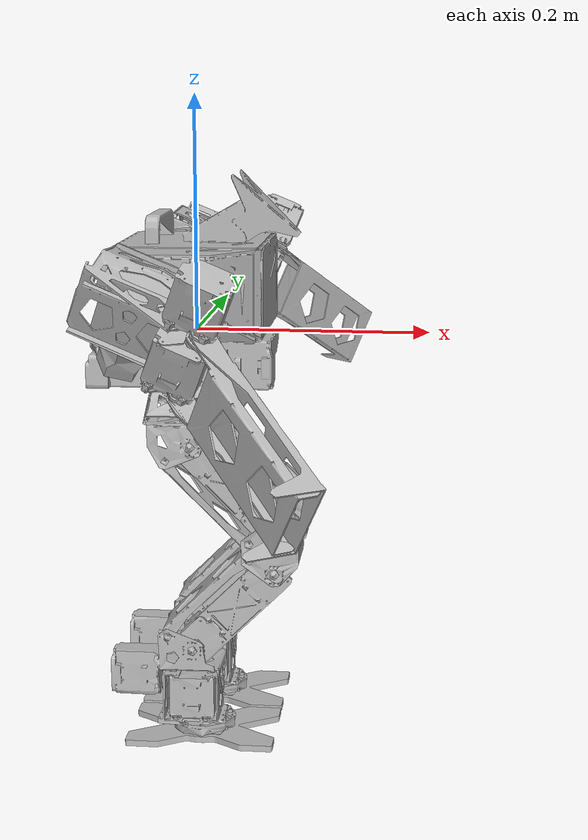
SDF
<sdf version='1.6'>
  <model name='ginko'>
    <link name='body_link0'>
      <pose frame=''>0 0 0 0 -0 0</pose>
      <inertial>
        <pose frame=''>8.3e-05 9e-06 0.038196 0 -0 0</pose>
        <mass>1.41503</mass>
        <inertia>
          <ixx>0.00248548</ixx>
          <ixy>-7.4e-07</ixy>
          <ixz>3.761e-06</ixz>
          <iyy>0.00121388</iyy>
          <iyz>-4.2e-07</iyz>
          <izz>0.00287756</izz>
        </inertia>
      </inertial>
      <collision name='body_link0_collision'>
        <pose frame=''>0 0 0 0 -0 0</pose>
        <geometry>
          <mesh>
            <scale>1 1 1</scale>
            <uri>model://ginko_description/meshes/stl/link00_chest.stl</uri>
          </mesh>
        </geometry>
        <surface>
          <contact>
            <ode>
              <kp>1e+06</kp>
              <kd>100</kd>
              <max_vel>1</max_vel>
              <min_depth>0.0001</min_depth>
            </ode>
          </contact>
          <friction>
            <ode>
              <mu>1</mu>
            </ode>
          </friction>
        </surface>
        <max_contacts>5</max_contacts>
      </collision>
      <visual name='body_link0_visual'>
        <pose frame=''>0 0 0 0 -0 0</pose>
        <geometry>
          <mesh>
            <scale>1 1 1</scale>
            <uri>model://ginko_description/meshes/obj/link00_chest.obj</uri>
          </mesh>
        </geometry>
        <material>
          <script>
            <uri>__default__</uri>
            <name>__default__</name>
          </script>
        </material>
      </visual>
      <gravity>1</gravity>
      <velocity_decay/>
      <self_collide>0</self_collide>
    </link>
    <link name='arm_l_link0'>
      <pose frame=''>0 0.10683 0.05115 0 0.3927 0</pose>
      <inertial>
        <pose frame=''>-0.011258 0.005293 0 0 -0 0</pose>
        <mass>0.0135601</mass>
        <inertia>
          <ixx>2.35e-06</ixx>
          <ixy>4e-08</ixy>
          <ixz>0</ixz>
          <iyy>1.67e-05</iyy>
          <iyz>0</iyz>
          <izz>1.606e-05</izz>
        </inertia>
      </inertial>
      <collision name='arm_l_link0_collision'>
        <pose frame=''>0 0 0 0 -0 0</pose>
        <geometry>
          <mesh>
            <scale>1 1 1</scale>
            <uri>model://ginko_description/meshes/stl/link09_l_arm01.stl</uri>
          </mesh>
        </geometry>
        <surface>
          <contact>
            <ode>
              <kp>1e+06</kp>
              <kd>100</kd>
              <max_vel>1</max_vel>
              <min_depth>0.0001</min_depth>
            </ode>
          </contact>
          <friction>
            <ode>
              <mu>1</mu>
            </ode>
          </friction>
        </surface>
        <max_contacts>5</max_contacts>
      </collision>
      <visual name='arm_l_link0_visual'>
        <pose frame=''>0 0 0 0 -0 0</pose>
        <geometry>
          <mesh>
            <scale>1 1 1</scale>
            <uri>model://ginko_description/meshes/obj/link09_l_arm01.obj</uri>
          </mesh>
        </geometry>
        <material>
          <script>
            <uri>__default__</uri>
            <name>__default__</name>
          </script>
        </material>
      </visual>
      <gravity>1</gravity>
      <velocity_decay/>
      <self_collide>0</self_collide>
    </link>
    <joint name='arm_l_joint0' type='revolute'>
      <child>arm_l_link0</child>
      <parent>body_link0</parent>
      <axis>
        <xyz>0 -1 0</xyz>
        <limit>
          <lower>-2.6</lower>
          <upper>2.6</upper>
          <effort>1000</effort>
          <velocity>10</velocity>
        </limit>
        <dynamics>
          <spring_reference>0</spring_reference>
          <spring_stiffness>0</spring_stiffness>
        </dynamics>
        <use_parent_model_frame>1</use_parent_model_frame>
      </axis>
    </joint>
    <link name='arm_l_link1'>
      <pose frame=''>0.032336 0.13143 0.037756 1.1781 0.3927 0</pose>
      <inertial>
        <pose frame=''>-0.026128 0.026506 -0.063334 0 -0 0</pose>
        <mass>0.331399</mass>
        <inertia>
          <ixx>0.00115128</ixx>
          <ixy>0.00015366</ixy>
          <ixz>-0.00031848</ixz>
          <iyy>0.00113572</iyy>
          <iyz>-0.00037104</iyz>
          <izz>0.00064743</izz>
        </inertia>
      </inertial>
      <collision name='arm_l_link1_collision'>
        <pose frame=''>0 0 0 0 -0 0</pose>
        <geometry>
          <mesh>
            <scale>1 1 1</scale>
            <uri>model://ginko_description/meshes/stl/link10_l_arm02.stl</uri>
          </mesh>
        </geometry>
        <surface>
          <contact>
            <ode>
              <kp>1e+06</kp>
              <kd>100</kd>
              <max_vel>1</max_vel>
              <min_depth>0.0001</min_depth>
            </ode>
          </contact>
          <friction>
            <ode>
              <mu>1</mu>
            </ode>
          </friction>
        </surface>
        <max_contacts>5</max_contacts>
      </collision>
      <visual name='arm_l_link1_visual'>
        <pose frame=''>0 0 0 0 -0 0</pose>
        <geometry>
          <mesh>
            <scale>1 1 1</scale>
            <uri>model://ginko_description/meshes/obj/link10_l_arm02.obj</uri>
          </mesh>
        </geometry>
        <material>
          <script>
            <uri>__default__</uri>
            <name>__default__</name>
          </script>
        </material>
      </visual>
      <gravity>1</gravity>
      <velocity_decay/>
      <self_collide>0</self_collide>
    </link>
    <joint name='arm_l_joint1' type='revolute'>
      <child>arm_l_link1</child>
      <parent>arm_l_link0</parent>
      <axis>
        <xyz>0.923879 -0 -0.382684</xyz>
        <limit>
          <lower>-0.85</lower>
          <upper>1.18</upper>
          <effort>1000</effort>
          <velocity>10</velocity>
        </limit>
        <dynamics>
          <spring_reference>0</spring_reference>
          <spring_stiffness>0</spring_stiffness>
        </dynamics>
        <use_parent_model_frame>1</use_parent_model_frame>
      </axis>
    </joint>
    <link name='arm_l_link2'>
      <pose frame=''>0.043634 0.256715 0.040991 1.59493 0.54755 0.871268</pose>
      <inertial>
        <pose frame=''>0.082349 -0.030247 0.005141 0 -0 0</pose>
        <mass>0.0328785</mass>
        <inertia>
          <ixx>2.277e-05</ixx>
          <ixy>-1.4e-07</ixy>
          <ixz>-5.8e-07</ixz>
          <iyy>8.197e-05</iyy>
          <iyz>-1e-08</iyz>
          <izz>0.00010105</izz>
        </inertia>
      </inertial>
      <collision name='arm_l_link2_collision'>
        <pose frame=''>0 0 0 0 -0 0</pose>
        <geometry>
          <mesh>
            <scale>1 1 1</scale>
            <uri>model://ginko_description/meshes/stl/link11_l_scissor01.stl</uri>
          </mesh>
        </geometry>
        <surface>
          <contact>
            <ode>
              <kp>1e+06</kp>
              <kd>100</kd>
              <max_vel>1</max_vel>
              <min_depth>0.0001</min_depth>
            </ode>
          </contact>
          <friction>
            <ode>
              <mu>1</mu>
            </ode>
          </friction>
        </surface>
        <max_contacts>5</max_contacts>
      </collision>
      <visual name='arm_l_link2_visual'>
        <pose frame=''>0 0 0 0 -0 0</pose>
        <geometry>
          <mesh>
            <scale>1 1 1</scale>
            <uri>model://ginko_description/meshes/obj/link11_l_scissor01.obj</uri>
          </mesh>
        </geometry>
        <material>
          <script>
            <uri>__default__</uri>
            <name>__default__</name>
          </script>
        </material>
      </visual>
      <gravity>1</gravity>
      <velocity_decay/>
      <self_collide>0</self_collide>
    </link>
    <joint name='arm_l_joint2' type='revolute'>
      <child>arm_l_link2</child>
      <parent>arm_l_link1</parent>
      <axis>
        <xyz>0.353555 0.382681 0.853554</xyz>
        <limit>
          <lower>-2.36</lower>
          <upper>2.36</upper>
          <effort>1000</effort>
          <velocity>10</velocity>
        </limit>
        <dynamics>
          <spring_reference>0</spring_reference>
          <spring_stiffness>0</spring_stiffness>
        </dynamics>
        <use_parent_model_frame>1</use_parent_model_frame>
      </axis>
    </joint>
    <link name='arm_l_link3'>
      <pose frame=''>0.023658 0.235093 -0.007235 1.59493 0.54755 0.871268</pose>
      <inertial>
        <pose frame=''>0.07807 0.025152 -0.006654 0 -0 0</pose>
        <mass>0.0293611</mass>
        <inertia>
          <ixx>1.452e-05</ixx>
          <ixy>2.3e-07</ixy>
          <ixz>-2.45e-06</ixz>
          <iyy>6.407e-05</iyy>
          <iyz>-2e-08</iyz>
          <izz>8.024e-05</izz>
        </inertia>
      </inertial>
      <collision name='arm_l_link3_collision'>
        <pose frame=''>0 0 0 0 -0 0</pose>
        <geometry>
          <mesh>
            <scale>1 1 1</scale>
            <uri>model://ginko_description/meshes/stl/link12_l_scissor02.stl</uri>
          </mesh>
        </geometry>
        <surface>
          <contact>
            <ode>
              <kp>1e+06</kp>
              <kd>100</kd>
              <max_vel>1</max_vel>
              <min_depth>0.0001</min_depth>
            </ode>
          </contact>
          <friction>
            <ode>
              <mu>1</mu>
            </ode>
          </friction>
        </surface>
        <max_contacts>5</max_contacts>
      </collision>
      <visual name='arm_l_link3_visual'>
        <pose frame=''>0 0 0 0 -0 0</pose>
        <geometry>
          <mesh>
            <scale>1 1 1</scale>
            <uri>model://ginko_description/meshes/obj/link12_l_scissor02.obj</uri>
          </mesh>
        </geometry>
        <material>
          <script>
            <uri>__default__</uri>
            <name>__default__</name>
          </script>
        </material>
      </visual>
      <gravity>1</gravity>
      <velocity_decay/>
      <self_collide>0</self_collide>
    </link>
    <joint name='arm_l_joint3' type='revolute'>
      <child>arm_l_link3</child>
      <parent>arm_l_link1</parent>
      <axis>
        <xyz>0.353555 0.382681 0.853554</xyz>
        <limit>
          <lower>-2.36</lower>
          <upper>2.36</upper>
          <effort>1000</effort>
          <velocity>10</velocity>
        </limit>
        <dynamics>
          <spring_reference>0</spring_reference>
          <spring_stiffness>0</spring_stiffness>
        </dynamics>
        <use_parent_model_frame>1</use_parent_model_frame>
      </axis>
    </joint>
    <link name='arm_l_urg_link'>
      <pose frame=''>-0.025808 0.187645 0.016544 -2.72079 0.362091 1.72835</pose>
      <inertial>
        <pose frame=''>-0.000146 8e-06 -0.023605 0 -0 0</pose>
        <mass>0.167055</mass>
        <inertia>
          <ixx>8.801e-05</ixx>
          <ixy>0</ixy>
          <ixz>-4.9e-07</ixz>
          <iyy>8.854e-05</iyy>
          <iyz>-4e-08</iyz>
          <izz>6.019e-05</izz>
        </inertia>
      </inertial>
      <collision name='arm_l_urg_link_collision'>
        <pose frame=''>0 0 0 0 -0 0</pose>
        <geometry>
          <mesh>
            <scale>1 1 1</scale>
            <uri>model://ginko_description/meshes/stl/urg.stl</uri>
          </mesh>
        </geometry>
      </collision>
      <visual name='arm_l_urg_link_visual'>
        <pose frame=''>0 0 0 0 -0 0</pose>
        <geometry>
          <mesh>
            <scale>1 1 1</scale>
            <uri>model://ginko_description/meshes/obj/urg.obj</uri>
          </mesh>
        </geometry>
      </visual>
    </link>
    <joint name='arm_l_urg_joint' type='revolute'>
      <child>arm_l_urg_link</child>
      <parent>arm_l_link1</parent>
      <axis>
        <xyz>-0.352702 -0.383416 -0.853577</xyz>
        <limit>
          <lower>0</lower>
          <upper>0</upper>
          <effort>0</effort>
          <velocity>0</velocity>
        </limit>
        <dynamics>
          <spring_reference>0</spring_reference>
          <spring_stiffness>0</spring_stiffness>
        </dynamics>
        <use_parent_model_frame>1</use_parent_model_frame>
      </axis>
    </joint>
    <link name='arm_r_link0'>
      <pose frame=''>0 -0.10683 0.05115 0 0.3927 0</pose>
      <inertial>
        <pose frame=''>-0.011258 -0.005293 0 0 -0 0</pose>
        <mass>0.0135601</mass>
        <inertia>
          <ixx>2.35e-06</ixx>
          <ixy>-4e-08</ixy>
          <ixz>0</ixz>
          <iyy>1.67e-05</iyy>
          <iyz>0</iyz>
          <izz>1.606e-05</izz>
        </inertia>
      </inertial>
      <collision name='arm_r_link0_collision'>
        <pose frame=''>0 0 0 0 -0 0</pose>
        <geometry>
          <mesh>
            <scale>1 1 1</scale>
            <uri>model://ginko_description/meshes/stl/link09_r_arm01.stl</uri>
          </mesh>
        </geometry>
        <surface>
          <contact>
            <ode>
              <kp>1e+06</kp>
              <kd>100</kd>
              <max_vel>1</max_vel>
              <min_depth>0.0001</min_depth>
            </ode>
          </contact>
          <friction>
            <ode>
              <mu>1</mu>
            </ode>
          </friction>
        </surface>
        <max_contacts>5</max_contacts>
      </collision>
      <visual name='arm_r_link0_visual'>
        <pose frame=''>0 0 0 0 -0 0</pose>
        <geometry>
          <mesh>
            <scale>1 1 1</scale>
            <uri>model://ginko_description/meshes/obj/link09_r_arm01.obj</uri>
          </mesh>
        </geometry>
        <material>
          <script>
            <uri>__default__</uri>
            <name>__default__</name>
          </script>
        </material>
      </visual>
      <gravity>1</gravity>
      <velocity_decay/>
      <self_collide>0</self_collide>
    </link>
    <joint name='arm_r_joint0' type='revolute'>
      <child>arm_r_link0</child>
      <parent>body_link0</parent>
      <axis>
        <xyz>0 1 0</xyz>
        <limit>
          <lower>-2.6</lower>
          <upper>2.6</upper>
          <effort>1000</effort>
          <velocity>10</velocity>
        </limit>
        <dynamics>
          <spring_reference>0</spring_reference>
          <spring_stiffness>0</spring_stiffness>
        </dynamics>
        <use_parent_model_frame>1</use_parent_model_frame>
      </axis>
    </joint>
    <link name='arm_r_link1'>
      <pose frame=''>0.032336 -0.13143 0.037756 -1.1781 0.3927 0</pose>
      <inertial>
        <pose frame=''>-0.026128 -0.026506 -0.063334 0 -0 0</pose>
        <mass>0.331399</mass>
        <inertia>
          <ixx>0.00115128</ixx>
          <ixy>-0.00015366</ixy>
          <ixz>-0.00031848</ixz>
          <iyy>0.00113572</iyy>
          <iyz>0.00037104</iyz>
          <izz>0.00064743</izz>
        </inertia>
      </inertial>
      <collision name='arm_r_link1_collision'>
        <pose frame=''>0 0 0 0 -0 0</pose>
        <geometry>
          <mesh>
            <scale>1 1 1</scale>
            <uri>model://ginko_description/meshes/stl/link10_r_arm02.stl</uri>
          </mesh>
        </geometry>
        <surface>
          <contact>
            <ode>
              <kp>1e+06</kp>
              <kd>100</kd>
              <max_vel>1</max_vel>
              <min_depth>0.0001</min_depth>
            </ode>
          </contact>
          <friction>
            <ode>
              <mu>1</mu>
            </ode>
          </friction>
        </surface>
        <max_contacts>5</max_contacts>
      </collision>
      <visual name='arm_r_link1_visual'>
        <pose frame=''>0 0 0 0 -0 0</pose>
        <geometry>
          <mesh>
            <scale>1 1 1</scale>
            <uri>model://ginko_description/meshes/obj/link10_r_arm02.obj</uri>
          </mesh>
        </geometry>
        <material>
          <script>
            <uri>__default__</uri>
            <name>__default__</name>
          </script>
        </material>
      </visual>
      <gravity>1</gravity>
      <velocity_decay/>
      <self_collide>0</self_collide>
    </link>
    <joint name='arm_r_joint1' type='revolute'>
      <child>arm_r_link1</child>
      <parent>arm_r_link0</parent>
      <axis>
        <xyz>0.923879 0 -0.382684</xyz>
        <limit>
          <lower>-0.85</lower>
          <upper>1.18</upper>
          <effort>1000</effort>
          <velocity>10</velocity>
        </limit>
        <dynamics>
          <spring_reference>0</spring_reference>
          <spring_stiffness>0</spring_stiffness>
        </dynamics>
        <use_parent_model_frame>1</use_parent_model_frame>
      </axis>
    </joint>
    <link name='arm_r_link2'>
      <pose frame=''>0.043634 -0.256715 0.040991 -1.59493 0.54755 -0.871268</pose>
      <inertial>
        <pose frame=''>0.082349 0.030247 0.005141 0 -0 0</pose>
        <mass>0.0328785</mass>
        <inertia>
          <ixx>2.277e-05</ixx>
          <ixy>1.4e-07</ixy>
          <ixz>-5.8e-07</ixz>
          <iyy>8.197e-05</iyy>
          <iyz>1e-08</iyz>
          <izz>0.00010105</izz>
        </inertia>
      </inertial>
      <collision name='arm_r_link2_collision'>
        <pose frame=''>0 0 0 0 -0 0</pose>
        <geometry>
          <mesh>
            <scale>1 1 1</scale>
            <uri>model://ginko_description/meshes/stl/link11_r_scissor01.stl</uri>
          </mesh>
        </geometry>
        <surface>
          <contact>
            <ode>
              <kp>1e+06</kp>
              <kd>100</kd>
              <max_vel>1</max_vel>
              <min_depth>0.0001</min_depth>
            </ode>
          </contact>
          <friction>
            <ode>
              <mu>1</mu>
            </ode>
          </friction>
        </surface>
        <max_contacts>5</max_contacts>
      </collision>
      <visual name='arm_r_link2_visual'>
        <pose frame=''>0 0 0 0 -0 0</pose>
        <geometry>
          <mesh>
            <scale>1 1 1</scale>
            <uri>model://ginko_description/meshes/obj/link11_r_scissor01.obj</uri>
          </mesh>
        </geometry>
        <material>
          <script>
            <uri>__default__</uri>
            <name>__default__</name>
          </script>
        </material>
      </visual>
      <gravity>1</gravity>
      <velocity_decay/>
      <self_collide>0</self_collide>
    </link>
    <joint name='arm_r_joint2' type='revolute'>
      <child>arm_r_link2</child>
      <parent>arm_r_link1</parent>
      <axis>
        <xyz>0.353555 -0.382681 0.853554</xyz>
        <limit>
          <lower>-2.36</lower>
          <upper>2.36</upper>
          <effort>1000</effort>
          <velocity>10</velocity>
        </limit>
        <dynamics>
          <spring_reference>0</spring_reference>
          <spring_stiffness>0</spring_stiffness>
        </dynamics>
        <use_parent_model_frame>1</use_parent_model_frame>
      </axis>
    </joint>
    <link name='arm_r_link3'>
      <pose frame=''>0.023658 -0.235093 -0.007235 -1.59493 0.54755 -0.871268</pose>
      <inertial>
        <pose frame=''>0.07807 -0.025152 -0.006654 0 -0 0</pose>
        <mass>0.0293611</mass>
        <inertia>
          <ixx>1.452e-05</ixx>
          <ixy>-2.3e-07</ixy>
          <ixz>-2.45e-06</ixz>
          <iyy>6.407e-05</iyy>
          <iyz>2e-08</iyz>
          <izz>8.024e-05</izz>
        </inertia>
      </inertial>
      <collision name='arm_r_link3_collision'>
        <pose frame=''>0 0 0 0 -0 0</pose>
        <geometry>
          <mesh>
            <scale>1 1 1</scale>
            <uri>model://ginko_description/meshes/stl/link12_r_scissor02.stl</uri>
          </mesh>
        </geometry>
        <surface>
          <contact>
            <ode>
              <kp>1e+06</kp>
              <kd>100</kd>
              <max_vel>1</max_vel>
              <min_depth>0.0001</min_depth>
            </ode>
          </contact>
          <friction>
            <ode>
              <mu>1</mu>
            </ode>
          </friction>
        </surface>
        <max_contacts>5</max_contacts>
      </collision>
      <visual name='arm_r_link3_visual'>
        <pose frame=''>0 0 0 0 -0 0</pose>
        <geometry>
          <mesh>
            <scale>1 1 1</scale>
            <uri>model://ginko_description/meshes/obj/link12_r_scissor02.obj</uri>
          </mesh>
        </geometry>
        <material>
          <script>
            <uri>__default__</uri>
            <name>__default__</name>
          </script>
        </material>
      </visual>
      <gravity>1</gravity>
      <velocity_decay/>
      <self_collide>0</self_collide>
    </link>
    <joint name='arm_r_joint3' type='revolute'>
      <child>arm_r_link3</child>
      <parent>arm_r_link1</parent>
      <axis>
        <xyz>0.353555 -0.382681 0.853554</xyz>
        <limit>
          <lower>-2.36</lower>
          <upper>2.36</upper>
          <effort>1000</effort>
          <velocity>10</velocity>
        </limit>
        <dynamics>
          <spring_reference>0</spring_reference>
          <spring_stiffness>0</spring_stiffness>
        </dynamics>
        <use_parent_model_frame>1</use_parent_model_frame>
      </axis>
    </joint>
    <link name='arm_r_urg_link'>
      <pose frame=''>-0.025808 -0.187645 0.016544 2.72079 0.362091 -1.72835</pose>
      <inertial>
        <pose frame=''>-0.000146 8e-06 -0.023605 0 -0 0</pose>
        <mass>0.167055</mass>
        <inertia>
          <ixx>8.801e-05</ixx>
          <ixy>0</ixy>
          <ixz>-4.9e-07</ixz>
          <iyy>8.854e-05</iyy>
          <iyz>-4e-08</iyz>
          <izz>6.019e-05</izz>
        </inertia>
      </inertial>
      <collision name='arm_r_urg_link_collision'>
        <pose frame=''>0 0 0 0 -0 0</pose>
        <geometry>
          <mesh>
            <scale>1 1 1</scale>
            <uri>model://ginko_description/meshes/stl/urg.stl</uri>
          </mesh>
        </geometry>
      </collision>
      <visual name='arm_r_urg_link_visual'>
        <pose frame=''>0 0 0 0 -0 0</pose>
        <geometry>
          <mesh>
            <scale>1 1 1</scale>
            <uri>model://ginko_description/meshes/obj/urg.obj</uri>
          </mesh>
        </geometry>
      </visual>
    </link>
    <joint name='arm_r_urg_joint' type='revolute'>
      <child>arm_r_urg_link</child>
      <parent>arm_r_link1</parent>
      <axis>
        <xyz>-0.352702 0.383416 -0.853577</xyz>
        <limit>
          <lower>0</lower>
          <upper>0</upper>
          <effort>0</effort>
          <velocity>0</velocity>
        </limit>
        <dynamics>
          <spring_reference>0</spring_reference>
          <spring_stiffness>0</spring_stiffness>
        </dynamics>
        <use_parent_model_frame>1</use_parent_model_frame>
      </axis>
    </joint>
    <link name='body_link1'>
      <pose frame=''>0 0 0 0 -0 0</pose>
      <inertial>
        <pose frame=''>-0.011355 -1e-06 -0.027202 0 -0 0</pose>
        <mass>0.333127</mass>
        <inertia>
          <ixx>0.00015328</ixx>
          <ixy>3e-08</ixy>
          <ixz>1.078e-05</ixz>
          <iyy>0.00073745</iyy>
          <iyz>0</iyz>
          <izz>0.00073107</izz>
        </inertia>
      </inertial>
      <collision name='body_link1_collision'>
        <pose frame=''>0 0 0 0 -0 0</pose>
        <geometry>
          <mesh>
            <scale>1 1 1</scale>
            <uri>model://ginko_description/meshes/stl/link01_waist.stl</uri>
          </mesh>
        </geometry>
        <surface>
          <contact>
            <ode>
              <kp>1e+06</kp>
              <kd>100</kd>
              <max_vel>1</max_vel>
              <min_depth>0.0001</min_depth>
            </ode>
          </contact>
          <friction>
            <ode>
              <mu>1</mu>
            </ode>
          </friction>
        </surface>
        <max_contacts>5</max_contacts>
      </collision>
      <visual name='body_link1_visual'>
        <pose frame=''>0 0 0 0 -0 0</pose>
        <geometry>
          <mesh>
            <scale>1 1 1</scale>
            <uri>model://ginko_description/meshes/obj/link01_waist.obj</uri>
          </mesh>
        </geometry>
        <material>
          <script>
            <uri>__default__</uri>
            <name>__default__</name>
          </script>
        </material>
      </visual>
      <gravity>1</gravity>
      <velocity_decay/>
      <self_collide>0</self_collide>
    </link>
    <joint name='body_joint1' type='revolute'>
      <child>body_link1</child>
      <parent>body_link0</parent>
      <axis>
        <xyz>0 0 1</xyz>
        <limit>
          <lower>-2.6</lower>
          <upper>2.6</upper>
          <effort>1000</effort>
          <velocity>10</velocity>
        </limit>
        <dynamics>
          <spring_reference>0</spring_reference>
          <spring_stiffness>0</spring_stiffness>
        </dynamics>
        <use_parent_model_frame>1</use_parent_model_frame>
      </axis>
    </joint>
    <link name='leg_l_link0'>
      <pose frame=''>-0.0404 0 -0.0409 0 -0 0</pose>
      <inertial>
        <pose frame=''>0.029308 0.037238 -0.026054 0 -0 0</pose>
        <mass>0.0343335</mass>
        <inertia>
          <ixx>2.443e-05</ixx>
          <ixy>-2.1e-07</ixy>
          <ixz>-2.1e-07</ixz>
          <iyy>2.287e-05</iyy>
          <iyz>-3.91e-06</iyz>
          <izz>2.983e-05</izz>
        </inertia>
      </inertial>
      <collision name='leg_l_link0_collision'>
        <pose frame=''>0 0 0 0 -0 0</pose>
        <geometry>
          <mesh>
            <scale>1 1 1</scale>
            <uri>model://ginko_description/meshes/stl/link02_l_femoral.stl</uri>
          </mesh>
        </geometry>
        <surface>
          <contact>
            <ode>
              <kp>1e+06</kp>
              <kd>100</kd>
              <max_vel>3</max_vel>
              <min_depth>0.0001</min_depth>
            </ode>
          </contact>
          <friction>
            <ode>
              <mu>0</mu>
            </ode>
          </friction>
        </surface>
        <max_contacts>5</max_contacts>
      </collision>
      <visual name='leg_l_link0_visual'>
        <pose frame=''>0 0 0 0 -0 0</pose>
        <geometry>
          <mesh>
            <scale>1 1 1</scale>
            <uri>model://ginko_description/meshes/obj/link02_l_femoral.obj</uri>
          </mesh>
        </geometry>
        <material>
          <script>
            <uri>__default__</uri>
            <name>__default__</name>
          </script>
        </material>
      </visual>
      <gravity>1</gravity>
      <velocity_decay>
        <linear>0.01</linear>
        <angular>0.01</angular>
      </velocity_decay>
      <self_collide>0</self_collide>
    </link>
    <joint name='leg_l_joint0' type='revolute'>
      <child>leg_l_link0</child>
      <parent>body_link1</parent>
      <axis>
        <xyz>-1 0 0</xyz>
        <limit>
          <lower>-0.8</lower>
          <upper>1.1781</upper>
          <effort>1000</effort>
          <velocity>10</velocity>
        </limit>
        <dynamics>
          <spring_reference>0</spring_reference>
          <spring_stiffness>0</spring_stiffness>
        </dynamics>
        <use_parent_model_frame>1</use_parent_model_frame>
      </axis>
    </joint>
    <link name='leg_l_link1'>
      <pose frame=''>0.0029 0.0175 -0.089 0 0.7854 0</pose>
      <inertial>
        <pose frame=''>0.05 0.032851 0.000681 0 -0 0</pose>
        <mass>0.185257</mass>
        <inertia>
          <ixx>0.00041331</ixx>
          <ixy>-3.605e-05</ixy>
          <ixz>-0</ixz>
          <iyy>0.00027917</iyy>
          <iyz>-1.84e-06</iyz>
          <izz>0.0006651</izz>
        </inertia>
      </inertial>
      <collision name='leg_l_link1_collision'>
        <pose frame=''>0 0 0 0 -0 0</pose>
        <geometry>
          <mesh>
            <scale>1 1 1</scale>
            <uri>model://ginko_description/meshes/stl/link03_l_leg01.stl</uri>
          </mesh>
        </geometry>
        <surface>
          <contact>
            <ode>
              <kp>1e+06</kp>
              <kd>100</kd>
              <max_vel>3</max_vel>
              <min_depth>0.0001</min_depth>
            </ode>
          </contact>
          <friction>
            <ode>
              <mu>0</mu>
            </ode>
          </friction>
        </surface>
        <max_contacts>5</max_contacts>
      </collision>
      <visual name='leg_l_link1_visual'>
        <pose frame=''>0 0 0 0 -0 0</pose>
        <geometry>
          <mesh>
            <scale>1 1 1</scale>
            <uri>model://ginko_description/meshes/obj/link03_l_leg01.obj</uri>
          </mesh>
        </geometry>
        <material>
          <script>
            <uri>__default__</uri>
            <name>__default__</name>
          </script>
        </material>
      </visual>
      <gravity>1</gravity>
      <velocity_decay>
        <linear>0.01</linear>
        <angular>0.01</angular>
      </velocity_decay>
      <self_collide>1</self_collide>
    </link>
    <joint name='leg_l_joint1' type='revolute'>
      <child>leg_l_link1</child>
      <parent>leg_l_link0</parent>
      <axis>
        <xyz>0 -1 0</xyz>
        <limit>
          <lower>-1.3</lower>
          <upper>0.7854</upper>
          <effort>1000</effort>
          <velocity>10</velocity>
        </limit>
        <dynamics>
          <spring_reference>0</spring_reference>
          <spring_stiffness>0</spring_stiffness>
        </dynamics>
        <use_parent_model_frame>1</use_parent_model_frame>
      </axis>
    </joint>
    <link name='leg_l_link3'>
      <pose frame=''>0.073611 0.0175 -0.159711 0 -0 0</pose>
      <inertial>
        <pose frame=''>0.003934 0.023642 -0.0193 0 -0 0</pose>
        <mass>0.0178118</mass>
        <inertia>
          <ixx>1.301e-05</ixx>
          <ixy>8e-08</ixy>
          <ixz>0</ixz>
          <iyy>7e-06</iyy>
          <iyz>0</iyz>
          <izz>1.388e-05</izz>
        </inertia>
      </inertial>
      <collision name='leg_l_link3_collision'>
        <pose frame=''>0 0 0 0 -0 0</pose>
        <geometry>
          <mesh>
            <scale>1 1 1</scale>
            <uri>model://ginko_description/meshes/stl/link05_l_knee.stl</uri>
          </mesh>
        </geometry>
        <surface>
          <contact>
            <ode>
              <kp>1e+06</kp>
              <kd>100</kd>
              <max_vel>3</max_vel>
              <min_depth>0.0001</min_depth>
            </ode>
          </contact>
          <friction>
            <ode>
              <mu>0.3</mu>
            </ode>
          </friction>
        </surface>
        <max_contacts>5</max_contacts>
      </collision>
      <visual name='leg_l_link3_visual'>
        <pose frame=''>0 0 0 0 -0 0</pose>
        <geometry>
          <mesh>
            <scale>1 1 1</scale>
            <uri>model://ginko_description/meshes/obj/link05_l_knee.obj</uri>
          </mesh>
        </geometry>
        <material>
          <script>
            <uri>__default__</uri>
            <name>__default__</name>
          </script>
        </material>
      </visual>
      <gravity>1</gravity>
      <velocity_decay>
        <linear>0.01</linear>
        <angular>0.01</angular>
      </velocity_decay>
      <self_collide>0</self_collide>
    </link>
    <joint name='leg_l_joint3' type='revolute'>
      <child>leg_l_link3</child>
      <parent>leg_l_link1</parent>
      <axis>
        <xyz>0 1 0</xyz>
        <limit>
          <lower>-3.14159</lower>
          <upper>3.14159</upper>
          <effort>1000</effort>
          <velocity>10</velocity>
        </limit>
        <dynamics>
          <spring_reference>0</spring_reference>
          <spring_stiffness>0</spring_stiffness>
        </dynamics>
        <use_parent_model_frame>1</use_parent_model_frame>
      </axis>
    </joint>
    <link name='leg_l_link4'>
      <pose frame=''>0.073611 0.0175 -0.198311 3.14159 0.785393 3.14159</pose>
      <inertial>
        <pose frame=''>0.05 0.032851 0.000681 0 -0 0</pose>
        <mass>0.185257</mass>
        <inertia>
          <ixx>0.00041331</ixx>
          <ixy>-3.605e-05</ixy>
          <ixz>-0</ixz>
          <iyy>0.00027917</iyy>
          <iyz>-1.84e-06</iyz>
          <izz>0.0006651</izz>
        </inertia>
      </inertial>
      <collision name='leg_l_link4_collision'>
        <pose frame=''>0 0 0 0 -0 0</pose>
        <geometry>
          <mesh>
            <scale>1 1 1</scale>
            <uri>model://ginko_description/meshes/stl/link03_l_leg01.stl</uri>
          </mesh>
        </geometry>
        <surface>
          <contact>
            <ode>
              <kp>1e+06</kp>
              <kd>100</kd>
              <max_vel>3</max_vel>
              <min_depth>0.0001</min_depth>
            </ode>
          </contact>
          <friction>
            <ode>
              <mu>0</mu>
            </ode>
          </friction>
        </surface>
        <max_contacts>5</max_contacts>
      </collision>
      <visual name='leg_l_link4_visual'>
        <pose frame=''>0 0 0 0 -0 0</pose>
        <geometry>
          <mesh>
            <scale>1 1 1</scale>
            <uri>model://ginko_description/meshes/obj/link03_l_leg01.obj</uri>
          </mesh>
        </geometry>
        <material>
          <script>
            <uri>__default__</uri>
            <name>__default__</name>
          </script>
        </material>
      </visual>
      <gravity>1</gravity>
      <velocity_decay>
        <linear>0.01</linear>
        <angular>0.01</angular>
      </velocity_decay>
      <self_collide>1</self_collide>
    </link>
    <joint name='leg_l_joint4' type='revolute'>
      <child>leg_l_link4</child>
      <parent>leg_l_link3</parent>
      <axis>
        <xyz>0 -1 0</xyz>
        <limit>
          <lower>-0.7854</lower>
          <upper>1.3</upper>
          <effort>1000</effort>
          <velocity>10</velocity>
        </limit>
        <dynamics>
          <spring_reference>0</spring_reference>
          <spring_stiffness>0</spring_stiffness>
        </dynamics>
        <use_parent_model_frame>1</use_parent_model_frame>
      </axis>
    </joint>
    <link name='leg_l_link6'>
      <pose frame=''>0.002899 0.0175 -0.269021 0 -0 0</pose>
      <inertial>
        <pose frame=''>-0.041661 0.024639 -0.025863 0 -0 0</pose>
        <mass>0.087992</mass>
        <inertia>
          <ixx>2.815e-05</ixx>
          <ixy>-4.1e-07</ixy>
          <ixz>9.8e-06</ixz>
          <iyy>6.846e-05</iyy>
          <iyz>-2.6e-07</iyz>
          <izz>6.529e-05</izz>
        </inertia>
      </inertial>
      <collision name='leg_l_link6_collision'>
        <pose frame=''>0 0 0 0 -0 0</pose>
        <geometry>
          <mesh>
            <scale>1 1 1</scale>
            <uri>model://ginko_description/meshes/stl/link06_r_toe01.stl</uri>
          </mesh>
        </geometry>
        <surface>
          <contact>
            <ode>
              <kp>1e+06</kp>
              <kd>100</kd>
              <max_vel>3</max_vel>
              <min_depth>0.0001</min_depth>
            </ode>
          </contact>
          <friction>
            <ode>
              <mu>0</mu>
            </ode>
          </friction>
        </surface>
        <max_contacts>5</max_contacts>
      </collision>
      <visual name='leg_l_link6_visual'>
        <pose frame=''>0 0 0 0 -0 0</pose>
        <geometry>
          <mesh>
            <scale>1 1 1</scale>
            <uri>model://ginko_description/meshes/obj/link06_l_toe01.obj</uri>
          </mesh>
        </geometry>
        <material>
          <script>
            <uri>__default__</uri>
            <name>__default__</name>
          </script>
        </material>
      </visual>
      <gravity>1</gravity>
      <velocity_decay>
        <linear>0.01</linear>
        <angular>0.01</angular>
      </velocity_decay>
      <self_collide>0</self_collide>
    </link>
    <joint name='leg_l_joint6' type='revolute'>
      <child>leg_l_link6</child>
      <parent>leg_l_link4</parent>
      <axis>
        <xyz>0 1 0</xyz>
        <limit>
          <lower>-3.14159</lower>
          <upper>3.14159</upper>
          <effort>1000</effort>
          <velocity>10</velocity>
        </limit>
        <dynamics>
          <spring_reference>0</spring_reference>
          <spring_stiffness>0</spring_stiffness>
        </dynamics>
        <use_parent_model_frame>1</use_parent_model_frame>
      </axis>
    </joint>
    <link name='leg_l_link7'>
      <pose frame=''>-0.025101 0.04225 -0.308121 0 -0 0</pose>
      <inertial>
        <pose frame=''>0.026588 1e-06 -0.017825 0 -0 0</pose>
        <mass>0.1092</mass>
        <inertia>
          <ixx>3.853e-05</ixx>
          <ixy>0</ixy>
          <ixz>-4.79e-06</ixz>
          <iyy>5.192e-05</iyy>
          <iyz>0</iyz>
          <izz>3.521e-05</izz>
        </inertia>
      </inertial>
      <collision name='leg_l_link7_collision'>
        <pose frame=''>0 0 0 0 -0 0</pose>
        <geometry>
          <mesh>
            <scale>1 1 1</scale>
            <uri>model://ginko_description/meshes/stl/link07_l_toe02.stl</uri>
          </mesh>
        </geometry>
        <surface>
          <contact>
            <ode>
              <kp>1e+06</kp>
              <kd>100</kd>
              <max_vel>3</max_vel>
              <min_depth>0.0001</min_depth>
            </ode>
          </contact>
          <friction>
            <ode>
              <mu>0</mu>
            </ode>
          </friction>
        </surface>
        <max_contacts>5</max_contacts>
      </collision>
      <visual name='leg_l_link7_visual'>
        <pose frame=''>0 0 0 0 -0 0</pose>
        <geometry>
          <mesh>
            <scale>1 1 1</scale>
            <uri>model://ginko_description/meshes/obj/link07_l_toe02.obj</uri>
          </mesh>
        </geometry>
        <material>
          <script>
            <uri>__default__</uri>
            <name>__default__</name>
          </script>
        </material>
      </visual>
      <gravity>1</gravity>
      <velocity_decay>
        <linear>0.01</linear>
        <angular>0.01</angular>
      </velocity_decay>
      <self_collide>0</self_collide>
    </link>
    <joint name='leg_l_joint7' type='revolute'>
      <child>leg_l_link7</child>
      <parent>leg_l_link6</parent>
      <axis>
        <xyz>-1 0 0</xyz>
        <limit>
          <lower>-1.6</lower>
          <upper>1.6</upper>
          <effort>1000</effort>
          <velocity>10</velocity>
        </limit>
        <dynamics>
          <spring_reference>0</spring_reference>
          <spring_stiffness>0</spring_stiffness>
        </dynamics>
        <use_parent_model_frame>1</use_parent_model_frame>
      </axis>
    </joint>
    <link name='leg_l_link8'>
      <pose frame=''>0.009099 0.04225 -0.348121 0 -0 0</pose>
      <inertial>
        <pose frame=''>0 0 -0.002693 0 -0 0</pose>
        <mass>0.0536311</mass>
        <inertia>
          <ixx>2.877e-05</ixx>
          <ixy>0</ixy>
          <ixz>0</ixz>
          <iyy>7.083e-05</iyy>
          <iyz>-0</iyz>
          <izz>9.934e-05</izz>
        </inertia>
      </inertial>
      <collision name='leg_l_link8_collision'>
        <pose frame=''>0 0 -0.003 0 -0 0</pose>
        <geometry>
          <box>
            <size>0.128 0.08 0.006</size>
          </box>
        </geometry>
        <surface>
          <contact>
            <ode>
              <kp>1e+06</kp>
              <kd>100</kd>
              <max_vel>3</max_vel>
              <min_depth>0.0001</min_depth>
            </ode>
          </contact>
          <friction>
            <ode>
              <mu>1</mu>
            </ode>
          </friction>
        </surface>
        <max_contacts>5</max_contacts>
      </collision>
      <visual name='leg_l_link8_visual'>
        <pose frame=''>0 0 0 0 -0 0</pose>
        <geometry>
          <mesh>
            <scale>1 1 1</scale>
            <uri>model://ginko_description/meshes/obj/link08_l_toe03.obj</uri>
          </mesh>
        </geometry>
        <material>
          <script>
            <uri>__default__</uri>
            <name>__default__</name>
          </script>
        </material>
      </visual>
      <gravity>1</gravity>
      <velocity_decay>
        <linear>0.01</linear>
        <angular>0.01</angular>
      </velocity_decay>
      <self_collide>0</self_collide>
    </link>
    <joint name='leg_l_joint8' type='revolute'>
      <child>leg_l_link8</child>
      <parent>leg_l_link7</parent>
      <axis>
        <xyz>0 0 1</xyz>
        <limit>
          <lower>-2.6</lower>
          <upper>2.6</upper>
          <effort>1000</effort>
          <velocity>10</velocity>
        </limit>
        <dynamics>
          <spring_reference>0</spring_reference>
          <spring_stiffness>0</spring_stiffness>
        </dynamics>
        <use_parent_model_frame>1</use_parent_model_frame>
      </axis>
    </joint>
    <link name='leg_l_link5'>
      <pose frame=''>0.052311 0.0175 -0.186261 3.14159 0.785393 3.14159</pose>
      <inertial>
        <pose frame=''>0.05 0.024951 -0.004912 0 -0 0</pose>
        <mass>0.0164664</mass>
        <inertia>
          <ixx>6.4e-06</ixx>
          <ixy>0</ixy>
          <ixz>0</ixz>
          <iyy>1.642e-05</iyy>
          <iyz>0</iyz>
          <izz>2.264e-05</izz>
        </inertia>
      </inertial>
      <collision name='leg_l_link5_collision'>
        <pose frame=''>0 0 0 0 -0 0</pose>
        <geometry>
          <mesh>
            <scale>1 1 1</scale>
            <uri>model://ginko_description/meshes/stl/link04_l_leg02.stl</uri>
          </mesh>
        </geometry>
        <surface>
          <contact>
            <ode>
              <kp>1e+06</kp>
              <kd>100</kd>
              <max_vel>3</max_vel>
              <min_depth>0.0001</min_depth>
            </ode>
          </contact>
          <friction>
            <ode>
              <mu>0</mu>
            </ode>
          </friction>
        </surface>
        <max_contacts>5</max_contacts>
      </collision>
      <visual name='leg_l_link5_visual'>
        <pose frame=''>0 0 0 0 -0 0</pose>
        <geometry>
          <mesh>
            <scale>1 1 1</scale>
            <uri>model://ginko_description/meshes/obj/link04_l_leg02.obj</uri>
          </mesh>
        </geometry>
        <material>
          <script>
            <uri>__default__</uri>
            <name>__default__</name>
          </script>
        </material>
      </visual>
      <gravity>1</gravity>
      <velocity_decay>
        <linear>0.01</linear>
        <angular>0.01</angular>
      </velocity_decay>
      <self_collide>0</self_collide>
    </link>
    <joint name='leg_l_joint5' type='revolute'>
      <child>leg_l_link5</child>
      <parent>leg_l_link3</parent>
      <axis>
        <xyz>0 -1 0</xyz>
        <limit>
          <lower>-3.14159</lower>
          <upper>3.14159</upper>
          <effort>1000</effort>
          <velocity>10</velocity>
        </limit>
        <dynamics>
          <spring_reference>0</spring_reference>
          <spring_stiffness>0</spring_stiffness>
        </dynamics>
        <use_parent_model_frame>1</use_parent_model_frame>
      </axis>
    </joint>
    <link name='leg_l_link2'>
      <pose frame=''>-0.0184 0.0175 -0.10105 0 0.7854 0</pose>
      <inertial>
        <pose frame=''>0.05 0.024951 -0.004912 0 -0 0</pose>
        <mass>0.0164664</mass>
        <inertia>
          <ixx>6.4e-06</ixx>
          <ixy>0</ixy>
          <ixz>0</ixz>
          <iyy>1.642e-05</iyy>
          <iyz>0</iyz>
          <izz>2.264e-05</izz>
        </inertia>
      </inertial>
      <collision name='leg_l_link2_collision'>
        <pose frame=''>0 0 0 0 -0 0</pose>
        <geometry>
          <mesh>
            <scale>1 1 1</scale>
            <uri>model://ginko_description/meshes/stl/link04_l_leg02.stl</uri>
          </mesh>
        </geometry>
        <surface>
          <contact>
            <ode>
              <kp>1e+06</kp>
              <kd>100</kd>
              <max_vel>3</max_vel>
              <min_depth>0.0001</min_depth>
            </ode>
          </contact>
          <friction>
            <ode>
              <mu>0</mu>
            </ode>
          </friction>
        </surface>
        <max_contacts>5</max_contacts>
      </collision>
      <visual name='leg_l_link2_visual'>
        <pose frame=''>0 0 0 0 -0 0</pose>
        <geometry>
          <mesh>
            <scale>1 1 1</scale>
            <uri>model://ginko_description/meshes/obj/link04_l_leg02.obj</uri>
          </mesh>
        </geometry>
        <material>
          <script>
            <uri>__default__</uri>
            <name>__default__</name>
          </script>
        </material>
      </visual>
      <gravity>1</gravity>
      <velocity_decay>
        <linear>0.01</linear>
        <angular>0.01</angular>
      </velocity_decay>
      <self_collide>0</self_collide>
    </link>
    <joint name='leg_l_joint2' type='revolute'>
      <child>leg_l_link2</child>
      <parent>leg_l_link0</parent>
      <axis>
        <xyz>0 -1 0</xyz>
        <limit>
          <lower>-3.14159</lower>
          <upper>3.14159</upper>
          <effort>1000</effort>
          <velocity>10</velocity>
        </limit>
        <dynamics>
          <spring_reference>0</spring_reference>
          <spring_stiffness>0</spring_stiffness>
        </dynamics>
        <use_parent_model_frame>1</use_parent_model_frame>
      </axis>
    </joint>
    <link name='leg_r_link0'>
      <pose frame=''>0.0205 0 -0.0409 0 -0 0</pose>
      <inertial>
        <pose frame=''>-0.029058 -0.037235 -0.02605 0 -0 0</pose>
        <mass>0.0343146</mass>
        <inertia>
          <ixx>2.441e-05</ixx>
          <ixy>1e-08</ixy>
          <ixz>2.1e-07</ixz>
          <iyy>2.285e-05</iyy>
          <iyz>3.91e-06</iyz>
          <izz>2.98e-05</izz>
        </inertia>
      </inertial>
      <collision name='leg_r_link0_collision'>
        <pose frame=''>0 0 0 0 -0 0</pose>
        <geometry>
          <mesh>
            <scale>1 1 1</scale>
            <uri>model://ginko_description/meshes/stl/link02_r_femoral.stl</uri>
          </mesh>
        </geometry>
        <surface>
          <contact>
            <ode>
              <kp>1e+06</kp>
              <kd>100</kd>
              <max_vel>3</max_vel>
              <min_depth>0.0001</min_depth>
            </ode>
          </contact>
          <friction>
            <ode>
              <mu>0</mu>
            </ode>
          </friction>
        </surface>
        <max_contacts>5</max_contacts>
      </collision>
      <visual name='leg_r_link0_visual'>
        <pose frame=''>0 0 0 0 -0 0</pose>
        <geometry>
          <mesh>
            <scale>1 1 1</scale>
            <uri>model://ginko_description/meshes/obj/link02_r_femoral.obj</uri>
          </mesh>
        </geometry>
        <material>
          <script>
            <uri>__default__</uri>
            <name>__default__</name>
          </script>
        </material>
      </visual>
      <gravity>1</gravity>
      <velocity_decay>
        <linear>0.01</linear>
        <angular>0.01</angular>
      </velocity_decay>
      <self_collide>0</self_collide>
    </link>
    <joint name='leg_r_joint0' type='revolute'>
      <child>leg_r_link0</child>
      <parent>body_link1</parent>
      <axis>
        <xyz>1 0 0</xyz>
        <limit>
          <lower>-1.1781</lower>
          <upper>0.8</upper>
          <effort>1000</effort>
          <velocity>10</velocity>
        </limit>
        <dynamics>
          <spring_reference>0</spring_reference>
          <spring_stiffness>0</spring_stiffness>
        </dynamics>
        <use_parent_model_frame>1</use_parent_model_frame>
      </axis>
    </joint>
    <link name='leg_r_link1'>
      <pose frame=''>0.0029 -0.0175 -0.089 0 0.7854 0</pose>
      <inertial>
        <pose frame=''>0.05 -0.017191 0.000681 0 -0 0</pose>
        <mass>0.185257</mass>
        <inertia>
          <ixx>0.00055489</ixx>
          <ixy>-4.242e-05</ixy>
          <ixz>0</ixz>
          <iyy>0.00027917</iyy>
          <iyz>-1.75e-06</iyz>
          <izz>0.00081028</izz>
        </inertia>
      </inertial>
      <collision name='leg_r_link1_collision'>
        <pose frame=''>0 0 0 0 -0 0</pose>
        <geometry>
          <mesh>
            <scale>1 1 1</scale>
            <uri>model://ginko_description/meshes/stl/link03_r_leg01.stl</uri>
          </mesh>
        </geometry>
        <surface>
          <contact>
            <ode>
              <kp>1e+06</kp>
              <kd>100</kd>
              <max_vel>3</max_vel>
              <min_depth>0.0001</min_depth>
            </ode>
          </contact>
          <friction>
            <ode>
              <mu>0</mu>
            </ode>
          </friction>
        </surface>
        <max_contacts>5</max_contacts>
      </collision>
      <visual name='leg_r_link1_visual'>
        <pose frame=''>0 0 0 0 -0 0</pose>
        <geometry>
          <mesh>
            <scale>1 1 1</scale>
            <uri>model://ginko_description/meshes/obj/link03_r_leg01.obj</uri>
          </mesh>
        </geometry>
        <material>
          <script>
            <uri>__default__</uri>
            <name>__default__</name>
          </script>
        </material>
      </visual>
      <gravity>1</gravity>
      <velocity_decay>
        <linear>0.01</linear>
        <angular>0.01</angular>
      </velocity_decay>
      <self_collide>1</self_collide>
    </link>
    <joint name='leg_r_joint1' type='revolute'>
      <child>leg_r_link1</child>
      <parent>leg_r_link0</parent>
      <axis>
        <xyz>0 1 0</xyz>
        <limit>
          <lower>-0.7854</lower>
          <upper>1.3</upper>
          <effort>1000</effort>
          <velocity>10</velocity>
        </limit>
        <dynamics>
          <spring_reference>0</spring_reference>
          <spring_stiffness>0</spring_stiffness>
        </dynamics>
        <use_parent_model_frame>1</use_parent_model_frame>
      </axis>
    </joint>
    <link name='leg_r_link3'>
      <pose frame=''>0.073611 -0.0175 -0.159711 0 -0 0</pose>
      <inertial>
        <pose frame=''>0.003934 -0.023642 -0.0193 0 -0 0</pose>
        <mass>0.0178118</mass>
        <inertia>
          <ixx>1.301e-05</ixx>
          <ixy>-8e-08</ixy>
          <ixz>0</ixz>
          <iyy>7e-06</iyy>
          <iyz>0</iyz>
          <izz>1.388e-05</izz>
        </inertia>
      </inertial>
      <collision name='leg_r_link3_collision'>
        <pose frame=''>0 0 0 0 -0 0</pose>
        <geometry>
          <mesh>
            <scale>1 1 1</scale>
            <uri>model://ginko_description/meshes/stl/link05_r_knee.stl</uri>
          </mesh>
        </geometry>
        <surface>
          <contact>
            <ode>
              <kp>1e+06</kp>
              <kd>100</kd>
              <max_vel>3</max_vel>
              <min_depth>0.0001</min_depth>
            </ode>
          </contact>
          <friction>
            <ode>
              <mu>0.3</mu>
            </ode>
          </friction>
        </surface>
        <max_contacts>5</max_contacts>
      </collision>
      <visual name='leg_r_link3_visual'>
        <pose frame=''>0 0 0 0 -0 0</pose>
        <geometry>
          <mesh>
            <scale>1 1 1</scale>
            <uri>model://ginko_description/meshes/obj/link05_r_knee.obj</uri>
          </mesh>
        </geometry>
        <material>
          <script>
            <uri>__default__</uri>
            <name>__default__</name>
          </script>
        </material>
      </visual>
      <gravity>1</gravity>
      <velocity_decay>
        <linear>0.01</linear>
        <angular>0.01</angular>
      </velocity_decay>
      <self_collide>0</self_collide>
    </link>
    <joint name='leg_r_joint3' type='revolute'>
      <child>leg_r_link3</child>
      <parent>leg_r_link1</parent>
      <axis>
        <xyz>0 -1 0</xyz>
        <limit>
          <lower>-3.14159</lower>
          <upper>3.14159</upper>
          <effort>1000</effort>
          <velocity>10</velocity>
        </limit>
        <dynamics>
          <spring_reference>0</spring_reference>
          <spring_stiffness>0</spring_stiffness>
        </dynamics>
        <use_parent_model_frame>1</use_parent_model_frame>
      </axis>
    </joint>
    <link name='leg_r_link4'>
      <pose frame=''>0.073611 -0.0175 -0.198311 3.14159 0.785393 3.14159</pose>
      <inertial>
        <pose frame=''>0.05 -0.017191 0.000681 0 -0 0</pose>
        <mass>0.185257</mass>
        <inertia>
          <ixx>0.00055489</ixx>
          <ixy>-4.242e-05</ixy>
          <ixz>0</ixz>
          <iyy>0.00027917</iyy>
          <iyz>-1.75e-06</iyz>
          <izz>0.00081028</izz>
        </inertia>
      </inertial>
      <collision name='leg_r_link4_collision'>
        <pose frame=''>0 0 0 0 -0 0</pose>
        <geometry>
          <mesh>
            <scale>1 1 1</scale>
            <uri>model://ginko_description/meshes/stl/link03_r_leg01.stl</uri>
          </mesh>
        </geometry>
        <surface>
          <contact>
            <ode>
              <kp>1e+06</kp>
              <kd>100</kd>
              <max_vel>3</max_vel>
              <min_depth>0.0001</min_depth>
            </ode>
          </contact>
          <friction>
            <ode>
              <mu>0</mu>
            </ode>
          </friction>
        </surface>
        <max_contacts>5</max_contacts>
      </collision>
      <visual name='leg_r_link4_visual'>
        <pose frame=''>0 0 0 0 -0 0</pose>
        <geometry>
          <mesh>
            <scale>1 1 1</scale>
            <uri>model://ginko_description/meshes/obj/link03_r_leg01.obj</uri>
          </mesh>
        </geometry>
        <material>
          <script>
            <uri>__default__</uri>
            <name>__default__</name>
          </script>
        </material>
      </visual>
      <gravity>1</gravity>
      <velocity_decay>
        <linear>0.01</linear>
        <angular>0.01</angular>
      </velocity_decay>
      <self_collide>1</self_collide>
    </link>
    <joint name='leg_r_joint4' type='revolute'>
      <child>leg_r_link4</child>
      <parent>leg_r_link3</parent>
      <axis>
        <xyz>0 1 0</xyz>
        <limit>
          <lower>-1.3</lower>
          <upper>0.7854</upper>
          <effort>1000</effort>
          <velocity>10</velocity>
        </limit>
        <dynamics>
          <spring_reference>0</spring_reference>
          <spring_stiffness>0</spring_stiffness>
        </dynamics>
        <use_parent_model_frame>1</use_parent_model_frame>
      </axis>
    </joint>
    <link name='leg_r_link6'>
      <pose frame=''>0.002899 -0.0175 -0.269021 0 -0 0</pose>
      <inertial>
        <pose frame=''>-0.041661 -0.024639 -0.025863 0 -0 0</pose>
        <mass>0.087992</mass>
        <inertia>
          <ixx>2.815e-05</ixx>
          <ixy>4.1e-07</ixy>
          <ixz>9.8e-06</ixz>
          <iyy>6.846e-05</iyy>
          <iyz>2.6e-07</iyz>
          <izz>6.529e-05</izz>
        </inertia>
      </inertial>
      <collision name='leg_r_link6_collision'>
        <pose frame=''>0 0 0 0 -0 0</pose>
        <geometry>
          <mesh>
            <scale>1 1 1</scale>
            <uri>model://ginko_description/meshes/stl/link06_r_toe01.stl</uri>
          </mesh>
        </geometry>
        <surface>
          <contact>
            <ode>
              <kp>1e+06</kp>
              <kd>100</kd>
              <max_vel>3</max_vel>
              <min_depth>0.0001</min_depth>
            </ode>
          </contact>
          <friction>
            <ode>
              <mu>0</mu>
            </ode>
          </friction>
        </surface>
        <max_contacts>5</max_contacts>
      </collision>
      <visual name='leg_r_link6_visual'>
        <pose frame=''>0 0 0 0 -0 0</pose>
        <geometry>
          <mesh>
            <scale>1 1 1</scale>
            <uri>model://ginko_description/meshes/obj/link06_r_toe01.obj</uri>
          </mesh>
        </geometry>
        <material>
          <script>
            <uri>__default__</uri>
            <name>__default__</name>
          </script>
        </material>
      </visual>
      <gravity>1</gravity>
      <velocity_decay>
        <linear>0.01</linear>
        <angular>0.01</angular>
      </velocity_decay>
      <self_collide>0</self_collide>
    </link>
    <joint name='leg_r_joint6' type='revolute'>
      <child>leg_r_link6</child>
      <parent>leg_r_link4</parent>
      <axis>
        <xyz>0 -1 0</xyz>
        <limit>
          <lower>-3.14159</lower>
          <upper>3.14159</upper>
          <effort>1000</effort>
          <velocity>10</velocity>
        </limit>
        <dynamics>
          <spring_reference>0</spring_reference>
          <spring_stiffness>0</spring_stiffness>
        </dynamics>
        <use_parent_model_frame>1</use_parent_model_frame>
      </axis>
    </joint>
    <link name='leg_r_link7'>
      <pose frame=''>-0.025101 -0.04225 -0.308121 0 -0 0</pose>
      <inertial>
        <pose frame=''>0.026588 -1e-06 -0.017825 0 -0 0</pose>
        <mass>0.1092</mass>
        <inertia>
          <ixx>3.853e-05</ixx>
          <ixy>0</ixy>
          <ixz>-4.79e-06</ixz>
          <iyy>5.192e-05</iyy>
          <iyz>0</iyz>
          <izz>3.521e-05</izz>
        </inertia>
      </inertial>
      <collision name='leg_r_link7_collision'>
        <pose frame=''>0 0 0 0 -0 0</pose>
        <geometry>
          <mesh>
            <scale>1 1 1</scale>
            <uri>model://ginko_description/meshes/stl/link07_r_toe02.stl</uri>
          </mesh>
        </geometry>
        <surface>
          <contact>
            <ode>
              <kp>1e+06</kp>
              <kd>100</kd>
              <max_vel>3</max_vel>
              <min_depth>0.0001</min_depth>
            </ode>
          </contact>
          <friction>
            <ode>
              <mu>0</mu>
            </ode>
          </friction>
        </surface>
        <max_contacts>5</max_contacts>
      </collision>
      <visual name='leg_r_link7_visual'>
        <pose frame=''>0 0 0 0 -0 0</pose>
        <geometry>
          <mesh>
            <scale>1 1 1</scale>
            <uri>model://ginko_description/meshes/obj/link07_r_toe02.obj</uri>
          </mesh>
        </geometry>
        <material>
          <script>
            <uri>__default__</uri>
            <name>__default__</name>
          </script>
        </material>
      </visual>
      <gravity>1</gravity>
      <velocity_decay>
        <linear>0.01</linear>
        <angular>0.01</angular>
      </velocity_decay>
      <self_collide>0</self_collide>
    </link>
    <joint name='leg_r_joint7' type='revolute'>
      <child>leg_r_link7</child>
      <parent>leg_r_link6</parent>
      <axis>
        <xyz>-1 0 0</xyz>
        <limit>
          <lower>-1.6</lower>
          <upper>1.6</upper>
          <effort>1000</effort>
          <velocity>10</velocity>
        </limit>
        <dynamics>
          <spring_reference>0</spring_reference>
          <spring_stiffness>0</spring_stiffness>
        </dynamics>
        <use_parent_model_frame>1</use_parent_model_frame>
      </axis>
    </joint>
    <link name='leg_r_link8'>
      <pose frame=''>0.009099 -0.04225 -0.348121 0 -0 0</pose>
      <inertial>
        <pose frame=''>0 0 -0.002693 0 -0 0</pose>
        <mass>0.0536311</mass>
        <inertia>
          <ixx>2.877e-05</ixx>
          <ixy>0</ixy>
          <ixz>0</ixz>
          <iyy>7.083e-05</iyy>
          <iyz>-0</iyz>
          <izz>9.934e-05</izz>
        </inertia>
      </inertial>
      <collision name='leg_r_link8_collision'>
        <pose frame=''>0 0 -0.003 0 -0 0</pose>
        <geometry>
          <box>
            <size>0.128 0.08 0.006</size>
          </box>
        </geometry>
        <surface>
          <contact>
            <ode>
              <kp>1e+06</kp>
              <kd>100</kd>
              <max_vel>3</max_vel>
              <min_depth>0.0001</min_depth>
            </ode>
          </contact>
          <friction>
            <ode>
              <mu>1</mu>
            </ode>
          </friction>
        </surface>
        <max_contacts>5</max_contacts>
      </collision>
      <visual name='leg_r_link8_visual'>
        <pose frame=''>0 0 0 0 -0 0</pose>
        <geometry>
          <mesh>
            <scale>1 1 1</scale>
            <uri>model://ginko_description/meshes/obj/link08_r_toe03.obj</uri>
          </mesh>
        </geometry>
        <material>
          <script>
            <uri>__default__</uri>
            <name>__default__</name>
          </script>
        </material>
      </visual>
      <gravity>1</gravity>
      <velocity_decay>
        <linear>0.01</linear>
        <angular>0.01</angular>
      </velocity_decay>
      <self_collide>0</self_collide>
    </link>
    <joint name='leg_r_joint8' type='revolute'>
      <child>leg_r_link8</child>
      <parent>leg_r_link7</parent>
      <axis>
        <xyz>0 0 1</xyz>
        <limit>
          <lower>-2.6</lower>
          <upper>2.6</upper>
          <effort>1000</effort>
          <velocity>10</velocity>
        </limit>
        <dynamics>
          <spring_reference>0</spring_reference>
          <spring_stiffness>0</spring_stiffness>
        </dynamics>
        <use_parent_model_frame>1</use_parent_model_frame>
      </axis>
    </joint>
    <link name='leg_r_link5'>
      <pose frame=''>0.052311 -0.0175 -0.186261 3.14159 0.785393 3.14159</pose>
      <inertial>
        <pose frame=''>0.05 -0.024951 -0.004912 0 -0 0</pose>
        <mass>0.0164664</mass>
        <inertia>
          <ixx>6.4e-06</ixx>
          <ixy>0</ixy>
          <ixz>0</ixz>
          <iyy>1.642e-05</iyy>
          <iyz>0</iyz>
          <izz>2.264e-05</izz>
        </inertia>
      </inertial>
      <collision name='leg_r_link5_collision'>
        <pose frame=''>0 0 0 0 -0 0</pose>
        <geometry>
          <mesh>
            <scale>1 1 1</scale>
            <uri>model://ginko_description/meshes/stl/link04_r_leg02.stl</uri>
          </mesh>
        </geometry>
        <surface>
          <contact>
            <ode>
              <kp>1e+06</kp>
              <kd>100</kd>
              <max_vel>3</max_vel>
              <min_depth>0.0001</min_depth>
            </ode>
          </contact>
          <friction>
            <ode>
              <mu>0</mu>
            </ode>
          </friction>
        </surface>
        <max_contacts>5</max_contacts>
      </collision>
      <visual name='leg_r_link5_visual'>
        <pose frame=''>0 0 0 0 -0 0</pose>
        <geometry>
          <mesh>
            <scale>1 1 1</scale>
            <uri>model://ginko_description/meshes/obj/link04_r_leg02.obj</uri>
          </mesh>
        </geometry>
        <material>
          <script>
            <uri>__default__</uri>
            <name>__default__</name>
          </script>
        </material>
      </visual>
      <gravity>1</gravity>
      <velocity_decay>
        <linear>0.01</linear>
        <angular>0.01</angular>
      </velocity_decay>
      <self_collide>0</self_collide>
    </link>
    <joint name='leg_r_joint5' type='revolute'>
      <child>leg_r_link5</child>
      <parent>leg_r_link3</parent>
      <axis>
        <xyz>0 1 0</xyz>
        <limit>
          <lower>-3.14159</lower>
          <upper>3.14159</upper>
          <effort>1000</effort>
          <velocity>10</velocity>
        </limit>
        <dynamics>
          <spring_reference>0</spring_reference>
          <spring_stiffness>0</spring_stiffness>
        </dynamics>
        <use_parent_model_frame>1</use_parent_model_frame>
      </axis>
    </joint>
    <link name='leg_r_link2'>
      <pose frame=''>-0.0184 -0.0175 -0.10105 0 0.7854 0</pose>
      <inertial>
        <pose frame=''>0.05 -0.024951 -0.004912 0 -0 0</pose>
        <mass>0.0164664</mass>
        <inertia>
          <ixx>6.4e-06</ixx>
          <ixy>0</ixy>
          <ixz>0</ixz>
          <iyy>1.642e-05</iyy>
          <iyz>0</iyz>
          <izz>2.264e-05</izz>
        </inertia>
      </inertial>
      <collision name='leg_r_link2_collision'>
        <pose frame=''>0 0 0 0 -0 0</pose>
        <geometry>
          <mesh>
            <scale>1 1 1</scale>
            <uri>model://ginko_description/meshes/stl/link04_r_leg02.stl</uri>
          </mesh>
        </geometry>
        <surface>
          <contact>
            <ode>
              <kp>1e+06</kp>
              <kd>100</kd>
              <max_vel>3</max_vel>
              <min_depth>0.0001</min_depth>
            </ode>
          </contact>
          <friction>
            <ode>
              <mu>0</mu>
            </ode>
          </friction>
        </surface>
        <max_contacts>5</max_contacts>
      </collision>
      <visual name='leg_r_link2_visual'>
        <pose frame=''>0 0 0 0 -0 0</pose>
        <geometry>
          <mesh>
            <scale>1 1 1</scale>
            <uri>model://ginko_description/meshes/obj/link04_r_leg02.obj</uri>
          </mesh>
        </geometry>
        <material>
          <script>
            <uri>__default__</uri>
            <name>__default__</name>
          </script>
        </material>
      </visual>
      <gravity>1</gravity>
      <velocity_decay>
        <linear>0.01</linear>
        <angular>0.01</angular>
      </velocity_decay>
      <self_collide>0</self_collide>
    </link>
    <joint name='leg_r_joint2' type='revolute'>
      <child>leg_r_link2</child>
      <parent>leg_r_link0</parent>
      <axis>
        <xyz>0 1 0</xyz>
        <limit>
          <lower>-3.14159</lower>
          <upper>3.14159</upper>
          <effort>1000</effort>
          <velocity>10</velocity>
        </limit>
        <dynamics>
          <spring_reference>0</spring_reference>
          <spring_stiffness>0</spring_stiffness>
        </dynamics>
        <use_parent_model_frame>1</use_parent_model_frame>
      </axis>
    </joint>
    <static>0</static>
    <plugin name='gazebo_ros_control' filename='libgazebo_ros_control.so'>
      <robotNamespace>/ginko</robotNamespace>
      <robotSimType>gazebo_ros_control/DefaultRobotHWSim</robotSimType>
    </plugin>
  </model>
</sdf>
